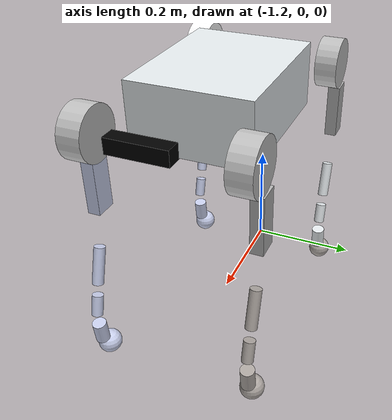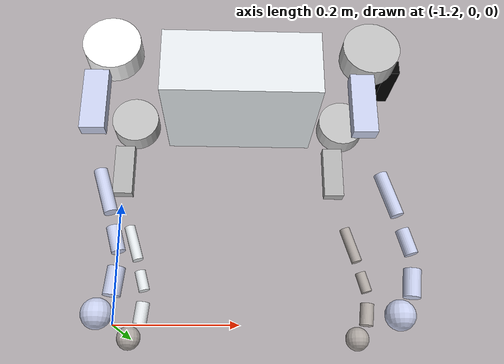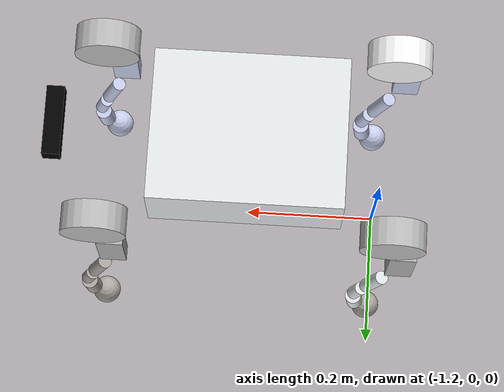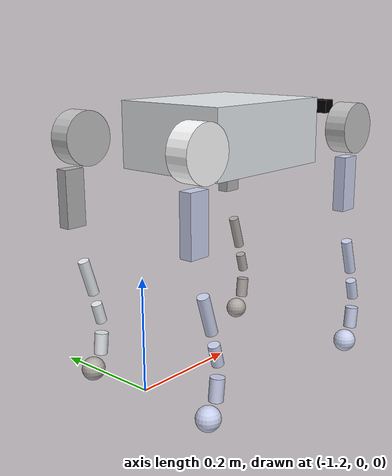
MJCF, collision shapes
<mujoco model="mei">
    <default>
        <default class="mei">
        <joint damping="0.001" armature="0.01" frictionloss="0.1"/>
        <default class="abduction">
            <position forcerange="-23.7 23.7" ctrlrange="-1.00356 1.00356"/>
        </default>
        <default class="hip">
            <position forcerange="-23.7 23.7" ctrlrange="-0.567232 4.93056"/>
        </default>
        <default class="knee">
            <position forcerange="-35.55 35.55" ctrlrange="-2.7227 -0.83776"/>
        </default>

        <default class="motorV">
            <velocity ctrlrange="-30 30"/>
        </default>
        <default class="motorT">
            <motor gear="1" ctrllimited="true" ctrlrange="-23.7 23.7"/>
        </default>
        <default class="motorVc">
            <velocity ctrlrange="-20 20"/>
        </default>
        <default class="motorTc">
            <motor gear="1" ctrllimited="true" ctrlrange="-35.5 35.5"/>
        </default>

        <default class="visual">
            <geom type="mesh" contype="0" conaffinity="0" group="2" />
        </default>
        <default class="collision"><!-- 碰撞 -->
            <geom group="3" mass="0" type="sphere"/>
        </default>
        <site size="0.001" rgba="0.5 0.5 0.5 0.3" group="4"/>
        </default>
    </default>

    <compiler angle="radian" meshdir="../meshes/" />
    <size njmax="500" nconmax="100" />
    <asset>
        <mesh name="base" file="base.STL" />
        <mesh name="FL_hip" file="FL_hip.STL" />
        <mesh name="FL_thigh" file="FL_thigh.STL" />
        <mesh name="FL_calf" file="FL_calf.STL" />
        <mesh name="FL_foot" file="FL_foot.STL" />
        <mesh name="FR_hip" file="FR_hip.STL" />
        <mesh name="FR_thigh" file="FR_thigh.STL" />
        <mesh name="FR_calf" file="FR_calf.STL" />
        <mesh name="FR_foot" file="FR_foot.STL" />
        <mesh name="RL_hip" file="RL_hip.STL" />
        <mesh name="RL_thigh" file="RL_thigh.STL" />
        <mesh name="RL_calf" file="RL_calf.STL" />
        <mesh name="RL_foot" file="RL_foot.STL" />
        <mesh name="RR_hip" file="RR_hip.STL" />
        <mesh name="RR_thigh" file="RR_thigh.STL" />
        <mesh name="RR_calf" file="RR_calf.STL" />
        <mesh name="RR_foot" file="RR_foot.STL" />
    </asset>
    <worldbody>

        <body name="robot" pos="-1 0 0.42" quat="1 0 0 0" childclass="mei">
        <joint name="float_base" type="free"/>
        <inertial pos="0 0 0" quat="1 0 0 0" mass="4.87475244" diaginertia="0.01839234 0.05151497 0.06165645"/>
        <geom  type="mesh" contype="0" conaffinity="0" group="1" rgba="0.898039 0.917647 0.929412 1" mesh="base" />
        <geom class="collision" size="0.136 0.107 0.058" type="box" rgba="0.898039 0.917647 0.929412 1" />
        <site name="imu" pos="0 0 0.056"/>
        <camera name="RayCasterCamera" pos="0.27 0.0 -0.0" xyaxes="0 -1 0 0 0 1"/>
        <geom size="0.0125 0.049 0.0125" pos="0.27 0 0.03" type="box" rgba="0.0 0.0 0.0 1" />

        <body name="FR_hip" pos="0.1403 -0.0502 0">
            <inertial pos="0.0595071 0.00087962 8.074e-05" quat="0.504125 0.502541 0.496919 0.496369" mass="0.644204" diaginertia="0.00317449 0.00285293 0.000438798" />
            <joint name="FR_hip_joint" pos="0 0 0" axis="1 0 0" limited="true" range="-1.0036 1.0036" />
            <geom  type="mesh" contype="0" conaffinity="0" group="1" rgba="0.752941 0.752941 0.752941 1" mesh="FR_hip" />
            <geom class="collision" size="0.046 0.02" pos="0.06676 -0.08 0" quat="0.707107 0.707107 0 0" type="cylinder" rgba="0.752941 0.752941 0.752941 1" />
            <body name="FR_thigh" pos="0.0667563 -0.0201539 0">
                <inertial pos="-0.00211808 -0.0470524 -0.0217645" quat="0.950167 -0.309807 0.0346802 -0.000206141" mass="0.958557" diaginertia="0.00590221 0.00493252 0.00188799" />
                <joint name="FR_thigh_joint" pos="0 0 0" axis="0 1 0" limited="true" range="-0.56723 4.9306" />
                <geom  type="mesh" contype="0" conaffinity="0" group="1" rgba="0.792157 0.819608 0.933333 1" mesh="FR_thigh" />
                <geom class="collision" size="0.05 0.011 0.019" pos="-0.019 -0.0691 -0.1" quat="0.707107 0 0.707107 0" type="box" rgba="0.792157 0.819608 0.933333 1" />
                <body name="FR_calf" pos="0 -0.0694 -0.22">
                    <inertial pos="0.0102562 0 -0.142333" quat="0.706652 -0.0253594 -0.0253594 0.706652" mass="0.185505" diaginertia="0.00353873 0.00348962 7.08642e-05" />
                    <joint name="FR_calf_joint" pos="0 0 0" axis="0 1 0" limited="true" range="-2.618 -0.69813" />
                    <geom type="mesh" contype="0" conaffinity="0" group="1" rgba="0.792157 0.819608 0.933333 1" mesh="FR_calf" />
                    <geom class="collision" size="0.01 0.034" pos="0.009 0 -0.028" quat="0.988771 0 -0.149438 0" type="cylinder" rgba="0.792157 0.819608 0.933333 1" />
                    <geom class="collision" size="0.01 0.019" pos="0.029 0 -0.1" quat="0.990901 0 -0.13459 0" type="cylinder" rgba="0.792157 0.819608 0.933333 1" />
                    <geom class="collision" size="0.0125 0.02" pos="0.031 0 -0.16" quat="0.998488 0 0.0549723 0" type="cylinder" rgba="0.792157 0.819608 0.933333 1" />
                    <geom pos="-0.00538771 0 -0.219021" type="mesh" contype="0" conaffinity="0" group="1" rgba="0.792157 0.819608 0.933333 1" mesh="FR_foot" />
                    <geom class="collision" size="0.02149" pos="0.0106123 0 -0.204021" rgba="0.792157 0.819608 0.933333 1" />
                    <site name="FR" size="0.02149" pos="0.0106123 0 -0.204021" group ="4"/>
                </body>
            </body>
        </body>

        <body name="FL_hip" pos="0.1403 0.0498 0">
            <inertial pos="0.0595071 0.00087962 -8.074e-05" quat="0.496919 0.496369 0.504125 0.502541" mass="0.644204" diaginertia="0.00317449 0.00285293 0.000438798" />
            <joint name="FL_hip_joint" pos="0 0 0" axis="1 0 0" limited="true" damping="0.1" armature="0.01" frictionloss="0.2" range="-1.0036 1.0036" />
            <geom type="mesh" contype="0" conaffinity="0" group="1" rgba="0.752941 0.752941 0.752941 1" mesh="FL_hip" />
            <geom class="collision" size="0.046 0.02" pos="0.06676 0.08 0" quat="0.707107 0.707107 0 0" type="cylinder" rgba="0.752941 0.752941 0.752941 1" />
            <body name="FL_thigh" pos="0.0667563 0.0201539 0">
                <inertial pos="-0.00211808 0.0470524 -0.0217645" quat="0.950167 0.309807 0.0346802 0.000206141" mass="0.958557" diaginertia="0.00590221 0.00493252 0.00188799" />
                <joint name="FL_thigh_joint" pos="0 0 0" axis="0 1 0" limited="true" range="-0.56723 4.9306" />
                <geom type="mesh" contype="0" conaffinity="0" group="1" rgba="0.698039 0.698039 0.698039 1" mesh="FL_thigh" />
                <geom class="collision" size="0.05 0.011 0.019" pos="-0.019 0.0691 -0.1" quat="0.707107 0 0.707107 0" type="box" rgba="0.698039 0.698039 0.698039 1" />
                <body name="FL_calf" pos="0 0.0694 -0.22">
                    <inertial pos="0.0102562 0 -0.142332" quat="0.706652 -0.0253595 -0.0253595 0.706652" mass="0.185505" diaginertia="0.00353873 0.00348961 7.08641e-05" />
                    <joint name="FL_calf_joint" pos="0 0 0" axis="0 1 0" limited="true" range="-2.618 -0.69813" />
                    <geom type="mesh" contype="0" conaffinity="0" group="1" rgba="0.686275 0.658824 0.639216 1" mesh="FL_calf" />
                    <geom class="collision" size="0.01 0.034" pos="0.009 0 -0.028" quat="0.988771 0 -0.149438 0" type="cylinder" rgba="0.686275 0.658824 0.639216 1" />
                    <geom class="collision" size="0.01 0.019" pos="0.029 0 -0.1" quat="0.990901 0 -0.13459 0" type="cylinder" rgba="0.686275 0.658824 0.639216 1" />
                    <geom class="collision" size="0.0125 0.02" pos="0.031 0 -0.16" quat="0.998488 0 0.0549723 0" type="cylinder" rgba="0.686275 0.658824 0.639216 1" />
                    <geom pos="-0.0053877 0 -0.21902" type="mesh" contype="0" conaffinity="0" group="1" rgba="0.686275 0.658824 0.639216 1" mesh="FL_foot" />
                    <geom class="collision" size="0.02149" pos="0.0106123 0 -0.20402" rgba="0.686275 0.658824 0.639216 1" />
                    <site name="FL" size="0.02149" pos="0.0106123 0 -0.204021" group ="4"/>
                </body>
            </body>
        </body>

        <body name="RR_hip" pos="-0.1403 -0.0502 0">
            <inertial pos="-0.0595071 -0.00087962 -8.074e-05" quat="0.496369 0.496919 0.502541 0.504125" mass="0.644204" diaginertia="0.00317449 0.00285293 0.000438798" />
            <joint name="RR_hip_joint" pos="0 0 0" axis="1 0 0" limited="true" range="-1.0036 1.0036" />
            <geom type="mesh" contype="0" conaffinity="0" group="1" rgba="1 1 1 1" mesh="RR_hip" />
            <geom class="collision" size="0.046 0.02" pos="-0.06676 -0.08 0" quat="0.707107 0.707107 0 0" type="cylinder" rgba="1 1 1 1" />
            <body name="RR_thigh" pos="-0.0667563 -0.0201539 0">
                <inertial pos="-0.00211808 -0.0470524 -0.0217645" quat="0.950167 -0.309807 0.0346802 -0.000206141" mass="0.958557" diaginertia="0.00590221 0.00493252 0.00188799" />
                <joint name="RR_thigh_joint" pos="0 0 0" axis="0 1 0" limited="true" range="-0.56723 4.9306" />
                <geom type="mesh" contype="0" conaffinity="0" group="1" rgba="0.792157 0.819608 0.933333 1" mesh="RR_thigh" />
                <geom class="collision" size="0.05 0.011 0.019" pos="-0.019 -0.0691 -0.1" quat="0.707107 0 0.707107 0" type="box" rgba="0.792157 0.819608 0.933333 1" />
                <body name="RR_calf" pos="0 -0.0694 -0.22">
                    <inertial pos="0.0102562 0 -0.142332" quat="0.706652 -0.0253595 -0.0253595 0.706652" mass="0.185505" diaginertia="0.00353873 0.00348961 7.08641e-05" />
                    <joint name="RR_calf_joint" pos="0 0 0" axis="0 1 0" limited="true" range="-2.618 -0.69813" />
                    <geom type="mesh" contype="0" conaffinity="0" group="1" rgba="0.792157 0.819608 0.933333 1" mesh="RR_calf" />
                    <geom class="collision" size="0.01 0.034" pos="0.009 0 -0.028" quat="0.988771 0 -0.149438 0" type="cylinder" rgba="0.792157 0.819608 0.933333 1" />
                    <geom class="collision" size="0.01 0.019" pos="0.029 0 -0.1" quat="0.990901 0 -0.13459 0" type="cylinder" rgba="0.792157 0.819608 0.933333 1" />
                    <geom class="collision" size="0.0125 0.02" pos="0.031 0 -0.16" quat="0.998488 0 0.0549723 0" type="cylinder" rgba="0.792157 0.819608 0.933333 1" />
                    <geom pos="-0.0053877 0 -0.21902" type="mesh" contype="0" conaffinity="0" group="1" rgba="0.79216 0.81961 0.93333 1" mesh="RR_foot" />
                    <geom class="collision" size="0.02149" pos="0.0106123 0 -0.20402" rgba="0.79216 0.81961 0.93333 1" />
                    <site name="RR" size="0.02149" pos="0.0106123 0 -0.204021" group ="4"/>
                </body>
            </body>
        </body>

        <body name="RL_hip" pos="-0.1403 0.0498 0">
            <inertial pos="-0.0595071 0.00087962 8.074e-05" quat="0.502541 0.504125 0.496369 0.496919" mass="0.644204" diaginertia="0.00317449 0.00285293 0.000438798" />
            <joint name="RL_hip_joint" pos="0 0 0" axis="1 0 0" limited="true" range="-1.0036 1.0036" />
            <geom type="mesh" contype="0" conaffinity="0" group="1" rgba="0.752941 0.752941 0.752941 1" mesh="RL_hip" />
            <geom class="collision" size="0.046 0.02" pos="-0.06676 0.08 0" quat="0.707107 0.707107 0 0" type="cylinder" rgba="0.752941 0.752941 0.752941 1" />
            <body name="RL_thigh" pos="-0.0667563 0.0201539 0">
                <inertial pos="-0.00211808 0.0470524 -0.0217645" quat="0.950167 0.309807 0.0346802 0.000206141" mass="0.958557" diaginertia="0.00590221 0.00493252 0.00188799" />
                <joint name="RL_thigh_joint" pos="0 0 0" axis="0 1 0" limited="true" range="-0.56723 4.9306" />
                <geom type="mesh" contype="0" conaffinity="0" group="1" rgba="0.698039 0.698039 0.698039 1" mesh="RL_thigh" />
                <geom class="collision" size="0.05 0.011 0.019" pos="-0.019 0.0691 -0.1" quat="0.707107 0 0.707107 0" type="box" rgba="0.698039 0.698039 0.698039 1" />
                <body name="RL_calf" pos="0 0.0694 -0.22">
                    <inertial pos="0.0102562 0 -0.142333" quat="0.706652 -0.0253594 -0.0253594 0.706652" mass="0.185505" diaginertia="0.00353873 0.00348962 7.08642e-05" />
                    <joint name="RL_calf_joint" pos="0 0 0" axis="0 1 0" limited="true" range="-2.618 -0.69813" />
                    <geom type="mesh" contype="0" conaffinity="0" group="1" rgba="0.898039 0.917647 0.929412 1" mesh="RL_calf" />
                    <geom class="collision" size="0.01 0.034" pos="0.009 0 -0.028" quat="0.988771 0 -0.149438 0" type="cylinder" rgba="0.898039 0.917647 0.929412 1" />
                    <geom class="collision" size="0.01 0.019" pos="0.029 0 -0.1" quat="0.990901 0 -0.13459 0" type="cylinder" rgba="0.898039 0.917647 0.929412 1" />
                    <geom class="collision" size="0.0125 0.02" pos="0.031 0 -0.16" quat="0.998488 0 0.0549723 0" type="cylinder" rgba="0.898039 0.917647 0.929412 1" />
                    <geom pos="-0.00538771 0 -0.219021" type="mesh" contype="0" conaffinity="0" group="1" rgba="0.686275 0.658824 0.639216 1" mesh="RL_foot" />
                    <geom class="collision" size="0.02149" pos="0.0106123 0 -0.204021" rgba="0.686275 0.658824 0.639216 1" />
                    <site name="RL" size="0.02149" pos="0.0106123 0 -0.204021" group ="4"/>
                </body>
            </body>
        </body>

       </body>
    </worldbody>

    <actuator>
        <position class="abduction" name="FR1" joint="FR_hip_joint"/>
        <position class="hip" name="FR2" joint="FR_thigh_joint"/>
        <position class="knee" name="FR3" joint="FR_calf_joint"/>
        <position class="abduction" name="FL1" joint="FL_hip_joint"/>
        <position class="hip" name="FL2" joint="FL_thigh_joint"/>
        <position class="knee" name="FL3" joint="FL_calf_joint"/>
        <position class="abduction" name="RR1" joint="RR_hip_joint"/>
        <position class="hip" name="RR2" joint="RR_thigh_joint"/>
        <position class="knee" name="RR3" joint="RR_calf_joint"/>
        <position class="abduction" name="RL1" joint="RL_hip_joint"/>
        <position class="hip" name="RL2" joint="RL_thigh_joint"/>
        <position class="knee" name="RL3" joint="RL_calf_joint"/>

        <velocity class="motorV" name="FR_hipV" joint="FR_hip_joint"/>
        <velocity class="motorV" name="FR_thighV" joint="FR_thigh_joint"/>
        <velocity class="motorVc" name="FR_calfV" joint="FR_calf_joint"/>
        <velocity class="motorV" name="FL_hipV" joint="FL_hip_joint"/>
        <velocity class="motorV" name="FL_thighV" joint="FL_thigh_joint"/>
        <velocity class="motorVc" name="FL_calfV" joint="FL_calf_joint"/>
        <velocity class="motorV" name="RR_hipV" joint="RR_hip_joint"/>
        <velocity class="motorV" name="RR_thighV" joint="RR_thigh_joint"/>
        <velocity class="motorVc" name="RR_calfV" joint="RR_calf_joint"/>
        <velocity class="motorV" name="RL_hipV" joint="RL_hip_joint"/>
        <velocity class="motorV" name="RL_thighV" joint="RL_thigh_joint"/>
        <velocity class="motorVc" name="RL_calfV" joint="RL_calf_joint"/>

        <motor name="FR_hip_joint" joint="FR_hip_joint" gear="1" ctrllimited="true" ctrlrange="-23.7 23.7"/>
        <motor name="FR_thigh_joint" joint="FR_thigh_joint" gear="1" ctrllimited="true" ctrlrange="-23.7 23.7"/>
        <motor name="FR_calf_joint" joint="FR_calf_joint" gear="1" ctrllimited="true" ctrlrange="-35.5 35.5"/>
        <motor name="FL_hip_joint" joint="FL_hip_joint" gear="1" ctrllimited="true" ctrlrange="-23.7 23.7"/>
        <motor name="FL_thigh_joint" joint="FL_thigh_joint" gear="1" ctrllimited="true" ctrlrange="-23.7 23.7"/>
        <motor name="FL_calf_joint" joint="FL_calf_joint" gear="1" ctrllimited="true" ctrlrange="-35.5 35.5"/>

        <motor name="RR_hip_joint" joint="RR_hip_joint" gear="1" ctrllimited="true" ctrlrange="-23.7 23.7"/>
        <motor name="RR_thigh_joint" joint="RR_thigh_joint" gear="1" ctrllimited="true" ctrlrange="-23.7 23.7"/>
        <motor name="RR_calf_joint" joint="RR_calf_joint" gear="1" ctrllimited="true" ctrlrange="-35.5 35.5"/>
        <motor name="RL_hip_joint" joint="RL_hip_joint" gear="1" ctrllimited="true" ctrlrange="-23.7 23.7"/>
        <motor name="RL_thigh_joint" joint="RL_thigh_joint" gear="1" ctrllimited="true" ctrlrange="-23.7 23.7"/>
        <motor name="RL_calf_joint" joint="RL_calf_joint" gear="1" ctrllimited="true" ctrlrange="-35.5 35.5"/>
    </actuator>
    <sensor>
        <jointpos name='FR_hip_joint_p'  joint='FR_hip_joint'/>
        <jointpos name='FR_thigh_joint_p'  joint='FR_thigh_joint'/>
        <jointpos name='FR_calf_joint_p'  joint='FR_calf_joint'/>
        <jointpos name='FL_hip_joint_p'  joint='FL_hip_joint'/>
        <jointpos name='FL_thigh_joint_p'  joint='FL_thigh_joint'/>
        <jointpos name='FL_calf_joint_p'  joint='FL_calf_joint'/>
        <jointpos name='RR_hip_joint_p'  joint='RR_hip_joint'/>
        <jointpos name='RR_thigh_joint_p'  joint='RR_thigh_joint'/>
        <jointpos name='RR_calf_joint_p'  joint='RR_calf_joint'/>
        <jointpos name='RL_hip_joint_p'  joint='RL_hip_joint'/>
        <jointpos name='RL_thigh_joint_p'  joint='RL_thigh_joint'/>
        <jointpos name='RL_calf_joint_p'  joint='RL_calf_joint'/>

        <jointvel name='FR_hip_joint_v'  joint='FR_hip_joint'/>
        <jointvel name='FR_thigh_joint_v'  joint='FR_thigh_joint'/>
        <jointvel name='FR_calf_joint_v'  joint='FR_calf_joint'/>
        <jointvel name='FL_hip_joint_v'  joint='FL_hip_joint'/>
        <jointvel name='FL_thigh_joint_v'  joint='FL_thigh_joint'/>
        <jointvel name='FL_calf_joint_v'  joint='FL_calf_joint'/>
        <jointvel name='RR_hip_joint_v'  joint='RR_hip_joint'/>
        <jointvel name='RR_thigh_joint_v'  joint='RR_thigh_joint'/>
        <jointvel name='RR_calf_joint_v'  joint='RR_calf_joint'/>
        <jointvel name='RL_hip_joint_v'  joint='RL_hip_joint'/>
        <jointvel name='RL_thigh_joint_v'  joint='RL_thigh_joint'/>
        <jointvel name='RL_calf_joint_v'  joint='RL_calf_joint'/>

        <framequat name="imu_quat" objtype="site" objname="imu" />
        <gyro name="imu_gyro" site="imu" />
        <accelerometer name="imu_acc" site="imu" />

        <framepos name="frame_pos" objtype="site" objname="imu" />
        <framelinvel name="frame_vel" objtype="site" objname="imu" />

    </sensor>

</mujoco>
